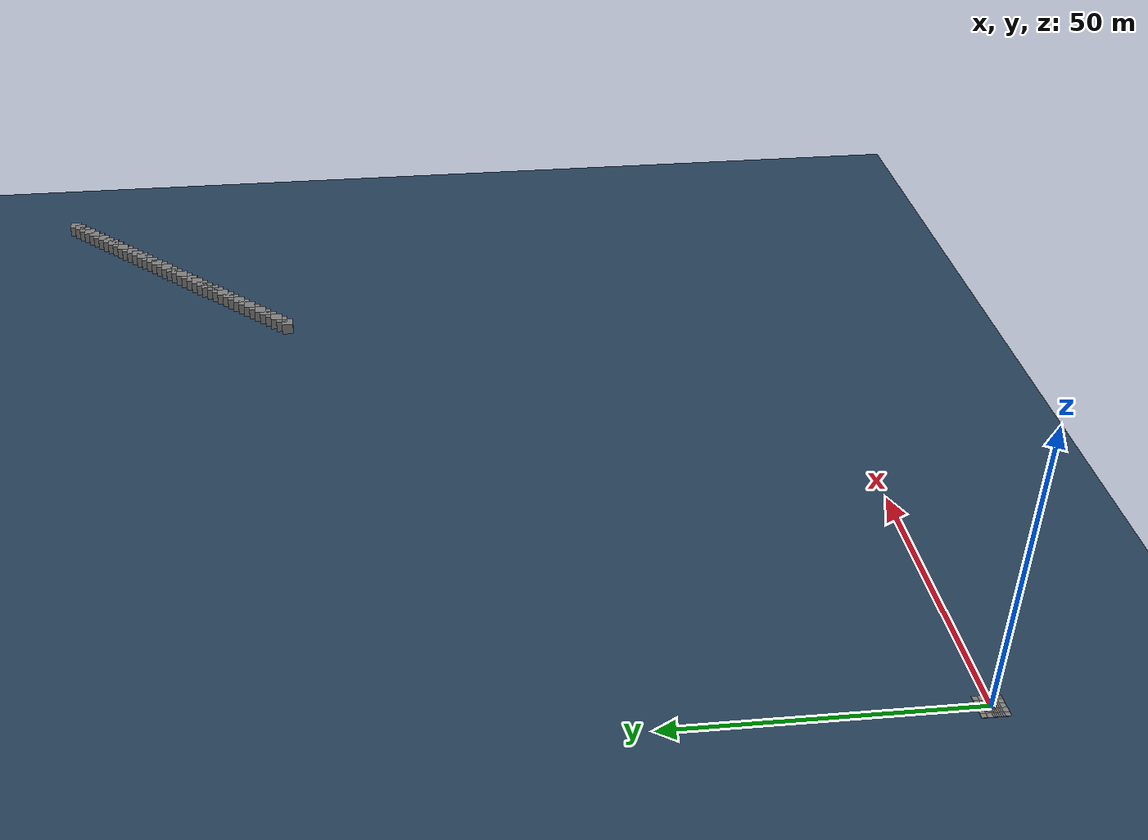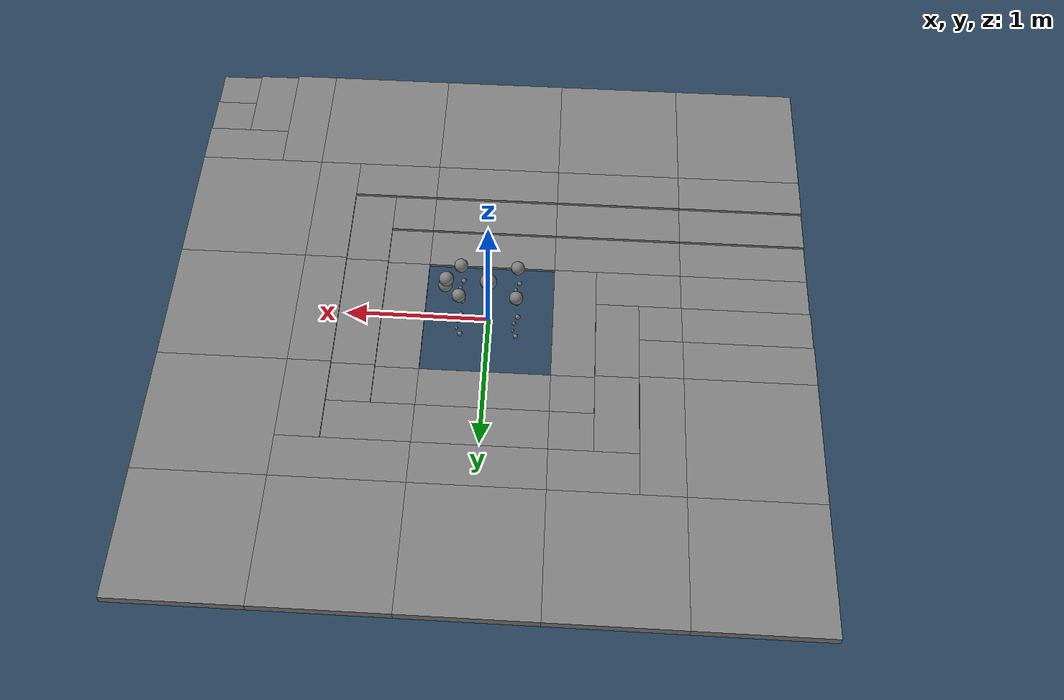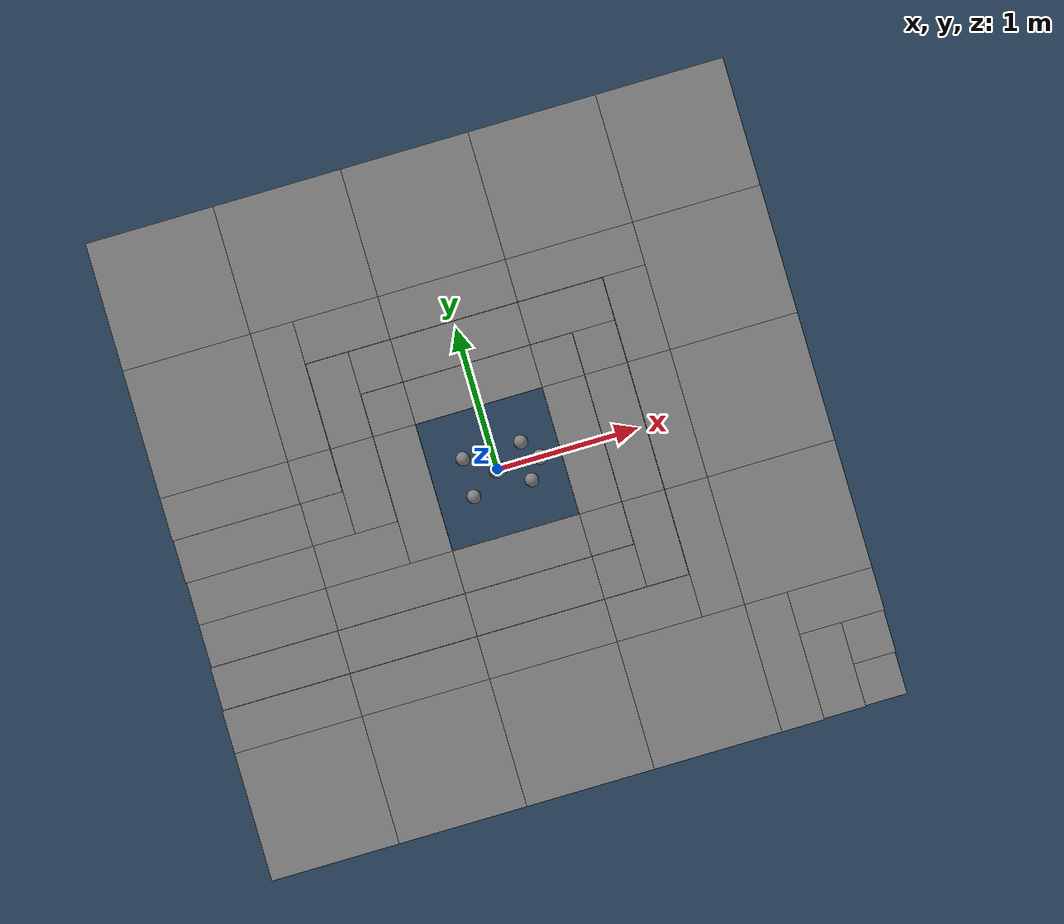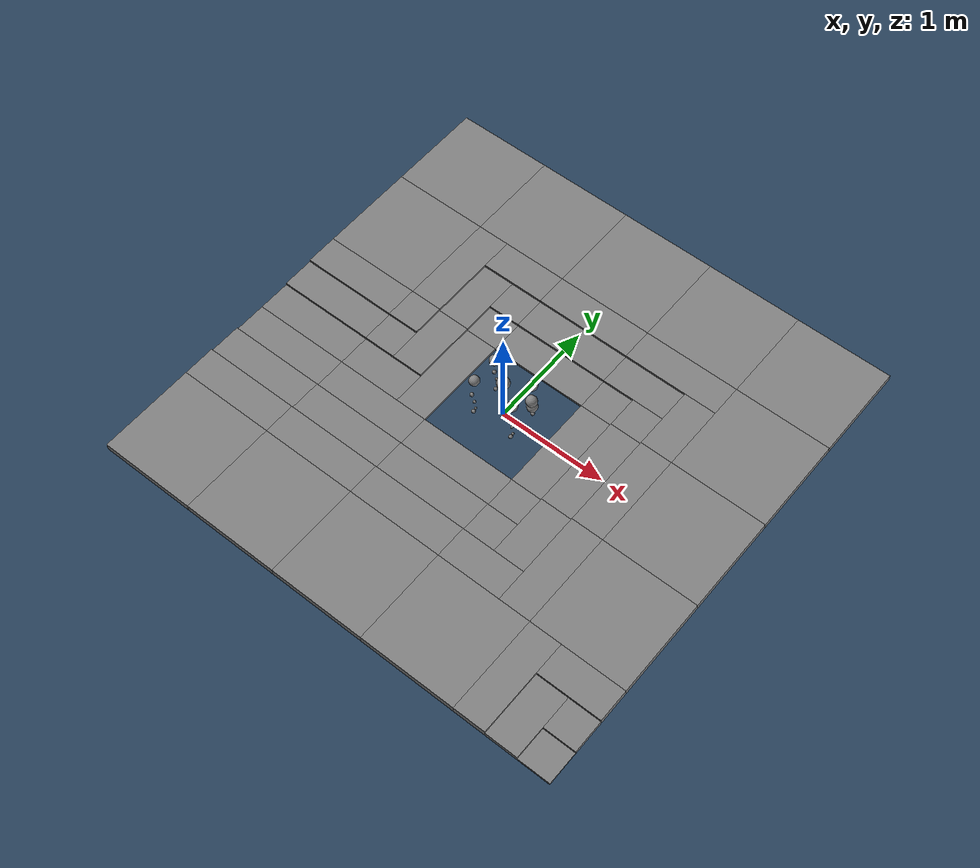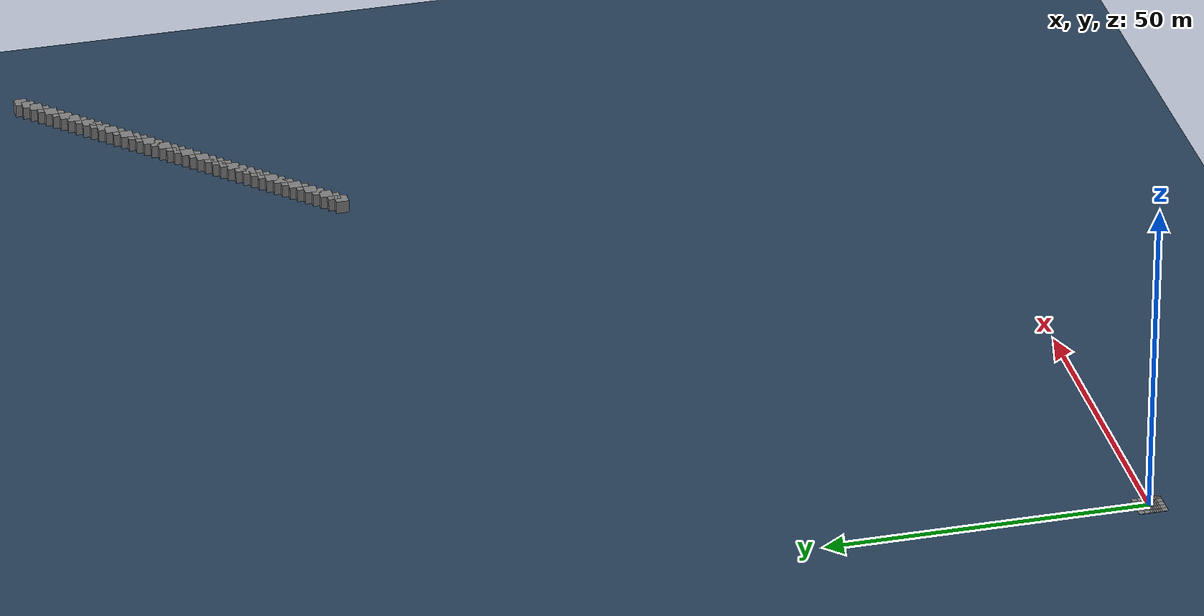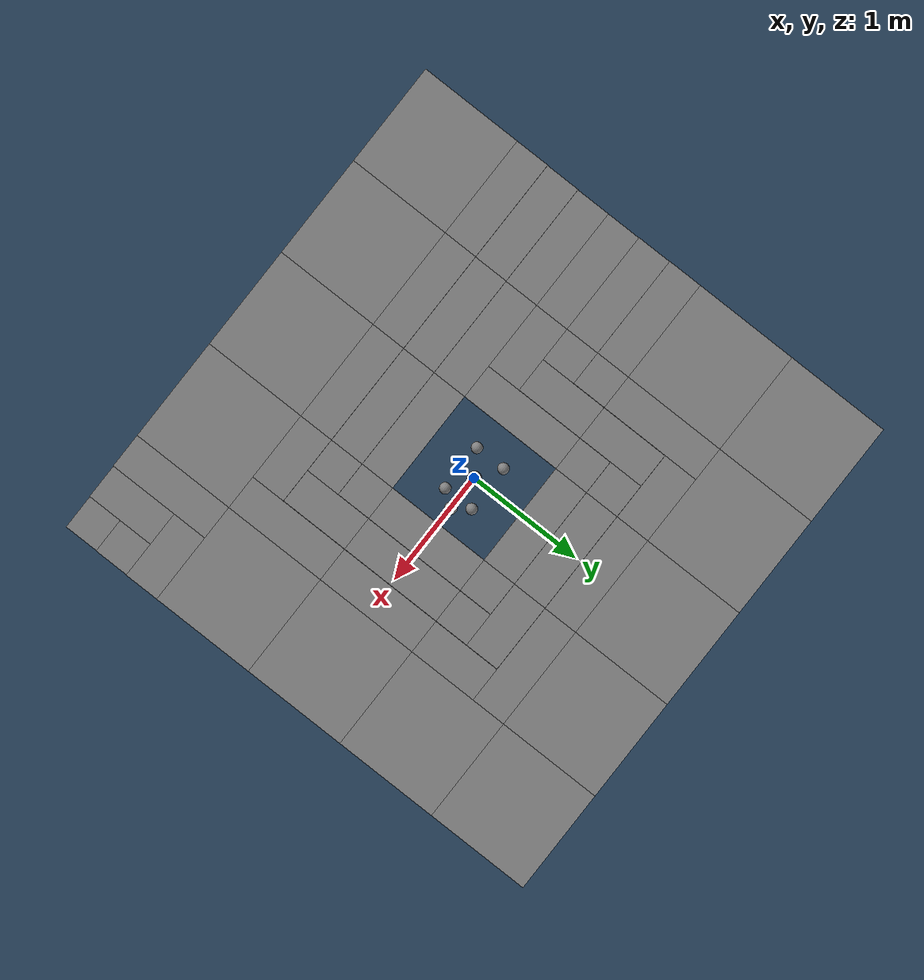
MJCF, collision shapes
<mujoco model="go2 scene">
  <include file="go2_mjx_feetonly.xml" />

  <statistic center="0 0 0.1" extent="0.8" />

  <visual>
    <headlight diffuse="0.6 0.6 0.6" ambient="0.3 0.3 0.3" specular="0 0 0" />
    <rgba haze="0.15 0.25 0.35 1" />
    <global azimuth="-130" elevation="-20" />
  </visual>

  <asset>
    <texture type="skybox" builtin="gradient" rgb1="0.3 0.5 0.7" rgb2="0 0 0" width="512" height="3072" />
    <texture type="2d" name="groundplane" builtin="checker" mark="edge" rgb1="0.2 0.3 0.4" rgb2="0.1 0.2 0.3" markrgb="0.8 0.8 0.8" width="300" height="300" />
    <material name="groundplane" texture="groundplane" texuniform="true" texrepeat="5 5" reflectance="0.2" />
  </asset>

  <worldbody>
    <light pos="0 0 1.5" dir="0 0 -1" directional="true" />
    <geom name="floor" pos="0 0 0" size="0 0 0.01" type="plane" contype="2" conaffinity="1" material="groundplane" />
  <body pos="-1.7999999999999998 -1.7999999999999998 0.03" quat="1.0 0.0 0.0 0.0" name="box_Nm6Tr"><geom type="box" size="0.44999999999999996 0.44999999999999996 0.03" contype="2" conaffinity="1" /></body><body pos="-1.7999999999999998 -0.6 0.01" quat="0.7071067811865476 0.0 0.0 -0.7071067811865475" name="box_NwNxp"><geom type="box" size="0.15 0.44999999999999996 0.01" contype="2" conaffinity="1" /></body><body pos="-1.7999999999999998 -0.8999999999999999 0.02" quat="0.7071067811865476 0.0 0.0 -0.7071067811865475" name="box_HHvL6"><geom type="box" size="0.15 0.44999999999999996 0.02" contype="2" conaffinity="1" /></body><body pos="-1.7999999999999998 -1.2 0.03" quat="0.7071067811865476 0.0 0.0 -0.7071067811865475" name="box_36J16"><geom type="box" size="0.15 0.44999999999999996 0.03" contype="2" conaffinity="1" /></body><body pos="-1.7999999999999998 -0.29999999999999993 0.01" quat="0.7071067811865476 0.0 0.0 0.7071067811865475" name="box_MTWan"><geom type="box" size="0.15 0.44999999999999996 0.01" contype="2" conaffinity="1" /></body><body pos="-1.7999999999999998 0.0 0.02" quat="0.7071067811865476 0.0 0.0 0.7071067811865475" name="box_zDFGZ"><geom type="box" size="0.15 0.44999999999999996 0.02" contype="2" conaffinity="1" /></body><body pos="-1.7999999999999998 0.30000000000000004 0.03" quat="0.7071067811865476 0.0 0.0 0.7071067811865475" name="box_k5GUp"><geom type="box" size="0.15 0.44999999999999996 0.03" contype="2" conaffinity="1" /></body><body pos="-1.7999999999999998 0.8999999999999999 0.03" quat="1.0 0.0 0.0 0.0" name="box_pOwWk"><geom type="box" size="0.44999999999999996 0.44999999999999996 0.03" contype="2" conaffinity="1" /></body><body pos="-1.7999999999999998 1.7999999999999998 0.03" quat="1.0 0.0 0.0 0.0" name="box_FNOws"><geom type="box" size="0.44999999999999996 0.44999999999999996 0.03" contype="2" conaffinity="1" /></body><body pos="-0.8999999999999999 -1.7999999999999998 0.03" quat="1.0 0.0 0.0 0.0" name="box_8z6QD"><geom type="box" size="0.44999999999999996 0.44999999999999996 0.03" contype="2" conaffinity="1" /></body><body pos="-0.8999999999999999 -0.6 0.01" quat="0.7071067811865476 0.0 0.0 -0.7071067811865475" name="box_YIve3"><geom type="box" size="0.15 0.44999999999999996 0.01" contype="2" conaffinity="1" /></body><body pos="-0.8999999999999999 -0.8999999999999999 0.02" quat="0.7071067811865476 0.0 0.0 -0.7071067811865475" name="box_hAleP"><geom type="box" size="0.15 0.44999999999999996 0.02" contype="2" conaffinity="1" /></body><body pos="-0.8999999999999999 -1.2 0.03" quat="0.7071067811865476 0.0 0.0 -0.7071067811865475" name="box_Pur32"><geom type="box" size="0.15 0.44999999999999996 0.03" contype="2" conaffinity="1" /></body><body pos="-1.2 0.29999999999999993 0.03" quat="1.0 0.0 0.0 0.0" name="box_qXF1c"><geom type="box" size="0.15 0.15 0.03" contype="2" conaffinity="1" /></body><body pos="-0.8999999999999999 0.14999999999999994 0.019999999999999997" quat="1.0 0.0 0.0 0.0" name="box_hrl3b"><geom type="box" size="0.15 0.3 0.019999999999999997" contype="2" conaffinity="1" /></body><body pos="-0.5999999999999999 -5.551115123125783e-17 0.009999999999999997" quat="1.0 0.0 0.0 0.0" name="box_dgnCx"><geom type="box" size="0.15 0.44999999999999996 0.009999999999999997" contype="2" conaffinity="1" /></body><body pos="-1.1999999999999997 -3.714144924404753e-17 0.019999999999999997" quat="0.7071067811865476 0.0 0.0 0.7071067811865475" name="box_VsTG2"><geom type="box" size="0.15 0.15 0.019999999999999997" contype="2" conaffinity="1" /></body><body pos="-1.0499999999999998 -0.30000000000000004 0.009999999999999997" quat="0.7071067811865476 0.0 0.0 0.7071067811865475" name="box_1s2xs"><geom type="box" size="0.15 0.3 0.009999999999999997" contype="2" conaffinity="1" /></body><body pos="-0.6 0.5999999999999999 0.01" quat="6.123233995736766e-17 0.0 0.0 1.0" name="box_fYZ6W"><geom type="box" size="0.15 0.15 0.01" contype="2" conaffinity="1" /></body><body pos="-0.8999999999999999 0.75 0.02" quat="6.123233995736766e-17 0.0 0.0 1.0" name="box_XAeQL"><geom type="box" size="0.15 0.3 0.02" contype="2" conaffinity="1" /></body><body pos="-1.2 0.9 0.03" quat="6.123233995736766e-17 0.0 0.0 1.0" name="box_OOl2y"><geom type="box" size="0.15 0.44999999999999996 0.03" contype="2" conaffinity="1" /></body><body pos="-0.6 0.8999999999999999 0.02" quat="-0.7071067811865475 -0.0 0.0 0.7071067811865476" name="box_5gOLo"><geom type="box" size="0.15 0.15 0.02" contype="2" conaffinity="1" /></body><body pos="-0.7499999999999999 1.2 0.03" quat="-0.7071067811865475 -0.0 0.0 0.7071067811865476" name="box_pNANv"><geom type="box" size="0.15 0.3 0.03" contype="2" conaffinity="1" /></body><body pos="-0.8999999999999999 1.7999999999999998 0.03" quat="1.0 0.0 0.0 0.0" name="box_EJ3fZ"><geom type="box" size="0.44999999999999996 0.44999999999999996 0.03" contype="2" conaffinity="1" /></body><body pos="0.0 -1.7999999999999998 0.03" quat="1.0 0.0 0.0 0.0" name="box_9PJuK"><geom type="box" size="0.44999999999999996 0.44999999999999996 0.03" contype="2" conaffinity="1" /></body><body pos="-1.8369701987210294e-17 -0.6 0.01" quat="0.7071067811865476 0.0 0.0 -0.7071067811865475" name="box_mPOBo"><geom type="box" size="0.15 0.44999999999999996 0.01" contype="2" conaffinity="1" /></body><body pos="0.0 -0.8999999999999999 0.02" quat="0.7071067811865476 0.0 0.0 -0.7071067811865475" name="box_4MjoI"><geom type="box" size="0.15 0.44999999999999996 0.02" contype="2" conaffinity="1" /></body><body pos="1.83697019872103e-17 -1.2 0.03" quat="0.7071067811865476 0.0 0.0 -0.7071067811865475" name="box_TPn5B"><geom type="box" size="0.15 0.44999999999999996 0.03" contype="2" conaffinity="1" /></body><body pos="-1.8369701987210294e-17 0.6 0.01" quat="0.7071067811865476 0.0 0.0 0.7071067811865475" name="box_0GTE1"><geom type="box" size="0.15 0.44999999999999996 0.01" contype="2" conaffinity="1" /></body><body pos="0.0 0.8999999999999999 0.02" quat="0.7071067811865476 0.0 0.0 0.7071067811865475" name="box_3olFJ"><geom type="box" size="0.15 0.44999999999999996 0.02" contype="2" conaffinity="1" /></body><body pos="1.83697019872103e-17 1.2 0.03" quat="0.7071067811865476 0.0 0.0 0.7071067811865475" name="box_oZWzq"><geom type="box" size="0.15 0.44999999999999996 0.03" contype="2" conaffinity="1" /></body><body pos="0.0 1.7999999999999998 0.03" quat="1.0 0.0 0.0 0.0" name="box_ZQ9qX"><geom type="box" size="0.44999999999999996 0.44999999999999996 0.03" contype="2" conaffinity="1" /></body><body pos="0.8999999999999999 -1.7999999999999998 0.03" quat="1.0 0.0 0.0 0.0" name="box_4Rkdt"><geom type="box" size="0.44999999999999996 0.44999999999999996 0.03" contype="2" conaffinity="1" /></body><body pos="0.5999999999999999 -0.6 0.01" quat="1.0 0.0 0.0 0.0" name="box_5QGp2"><geom type="box" size="0.15 0.15 0.01" contype="2" conaffinity="1" /></body><body pos="0.8999999999999999 -0.75 0.02" quat="1.0 0.0 0.0 0.0" name="box_3v6BB"><geom type="box" size="0.15 0.3 0.02" contype="2" conaffinity="1" /></body><body pos="1.2 -0.8999999999999999 0.03" quat="1.0 0.0 0.0 0.0" name="box_USUPY"><geom type="box" size="0.15 0.44999999999999996 0.03" contype="2" conaffinity="1" /></body><body pos="0.6 -0.8999999999999999 0.02" quat="0.7071067811865476 0.0 0.0 0.7071067811865475" name="box_awMER"><geom type="box" size="0.15 0.15 0.02" contype="2" conaffinity="1" /></body><body pos="0.75 -1.2 0.03" quat="0.7071067811865476 0.0 0.0 0.7071067811865475" name="box_icqPL"><geom type="box" size="0.15 0.3 0.03" contype="2" conaffinity="1" /></body><body pos="0.6 0.0 0.01" quat="1.0 0.0 0.0 0.0" name="box_sB2ld"><geom type="box" size="0.15 0.44999999999999996 0.01" contype="2" conaffinity="1" /></body><body pos="0.8999999999999999 0.0 0.02" quat="1.0 0.0 0.0 0.0" name="box_5x1b9"><geom type="box" size="0.15 0.44999999999999996 0.02" contype="2" conaffinity="1" /></body><body pos="1.2 0.0 0.03" quat="1.0 0.0 0.0 0.0" name="box_esOvl"><geom type="box" size="0.15 0.44999999999999996 0.03" contype="2" conaffinity="1" /></body><body pos="0.6 0.5999999999999999 0.01" quat="0.7071067811865476 0.0 0.0 0.7071067811865475" name="box_CcYl1"><geom type="box" size="0.15 0.15 0.01" contype="2" conaffinity="1" /></body><body pos="0.75 0.8999999999999999 0.02" quat="0.7071067811865476 0.0 0.0 0.7071067811865475" name="box_6Eo4k"><geom type="box" size="0.15 0.3 0.02" contype="2" conaffinity="1" /></body><body pos="0.9 1.2 0.03" quat="0.7071067811865476 0.0 0.0 0.7071067811865475" name="box_aPaN2"><geom type="box" size="0.15 0.44999999999999996 0.03" contype="2" conaffinity="1" /></body><body pos="0.8999999999999999 0.6 0.02" quat="6.123233995736766e-17 0.0 0.0 1.0" name="box_m9Nul"><geom type="box" size="0.15 0.15 0.02" contype="2" conaffinity="1" /></body><body pos="1.2 0.75 0.03" quat="6.123233995736766e-17 0.0 0.0 1.0" name="box_eV5jA"><geom type="box" size="0.15 0.3 0.03" contype="2" conaffinity="1" /></body><body pos="0.8999999999999999 1.7999999999999998 0.03" quat="1.0 0.0 0.0 0.0" name="box_YvWSe"><geom type="box" size="0.44999999999999996 0.44999999999999996 0.03" contype="2" conaffinity="1" /></body><body pos="2.0999999999999996 -2.0999999999999996 0.01" quat="6.123233995736766e-17 0.0 0.0 1.0" name="box_x4KJy"><geom type="box" size="0.15 0.15 0.01" contype="2" conaffinity="1" /></body><body pos="1.7999999999999998 -1.9499999999999997 0.02" quat="6.123233995736766e-17 0.0 0.0 1.0" name="box_FozON"><geom type="box" size="0.15 0.3 0.02" contype="2" conaffinity="1" /></body><body pos="1.4999999999999998 -1.7999999999999998 0.03" quat="6.123233995736766e-17 0.0 0.0 1.0" name="box_8gdtH"><geom type="box" size="0.15 0.44999999999999996 0.03" contype="2" conaffinity="1" /></body><body pos="2.0999999999999996 -1.7999999999999998 0.02" quat="-0.7071067811865475 -0.0 0.0 0.7071067811865476" name="box_yaygV"><geom type="box" size="0.15 0.15 0.02" contype="2" conaffinity="1" /></body><body pos="1.9499999999999997 -1.4999999999999998 0.03" quat="-0.7071067811865475 -0.0 0.0 0.7071067811865476" name="box_V4ypC"><geom type="box" size="0.15 0.3 0.03" contype="2" conaffinity="1" /></body><body pos="1.7999999999999998 -0.8999999999999999 0.03" quat="1.0 0.0 0.0 0.0" name="box_dAKIn"><geom type="box" size="0.44999999999999996 0.44999999999999996 0.03" contype="2" conaffinity="1" /></body><body pos="1.7999999999999998 0.0 0.03" quat="1.0 0.0 0.0 0.0" name="box_LXe10"><geom type="box" size="0.44999999999999996 0.44999999999999996 0.03" contype="2" conaffinity="1" /></body><body pos="1.7999999999999998 0.8999999999999999 0.03" quat="1.0 0.0 0.0 0.0" name="box_yuHFf"><geom type="box" size="0.44999999999999996 0.44999999999999996 0.03" contype="2" conaffinity="1" /></body><body pos="1.7999999999999998 1.7999999999999998 0.03" quat="1.0 0.0 0.0 0.0" name="box_IHDcL"><geom type="box" size="0.44999999999999996 0.44999999999999996 0.03" contype="2" conaffinity="1" /></body><body pos="100 100 10" quat="1.0 0.0 0.0 0.0" name="box_W3Jhx"><geom type="box" size="1.0 1.0 1.0" contype="2" conaffinity="1" /></body><body pos="101 101 10" quat="1.0 0.0 0.0 0.0" name="box_bedo7"><geom type="box" size="1.0 1.0 1.0" contype="2" conaffinity="1" /></body><body pos="102 102 10" quat="1.0 0.0 0.0 0.0" name="box_allpR"><geom type="box" size="1.0 1.0 1.0" contype="2" conaffinity="1" /></body><body pos="103 103 10" quat="1.0 0.0 0.0 0.0" name="box_Fm7lK"><geom type="box" size="1.0 1.0 1.0" contype="2" conaffinity="1" /></body><body pos="104 104 10" quat="1.0 0.0 0.0 0.0" name="box_JejyQ"><geom type="box" size="1.0 1.0 1.0" contype="2" conaffinity="1" /></body><body pos="105 105 10" quat="1.0 0.0 0.0 0.0" name="box_LWDQL"><geom type="box" size="1.0 1.0 1.0" contype="2" conaffinity="1" /></body><body pos="106 106 10" quat="1.0 0.0 0.0 0.0" name="box_sZZhk"><geom type="box" size="1.0 1.0 1.0" contype="2" conaffinity="1" /></body><body pos="107 107 10" quat="1.0 0.0 0.0 0.0" name="box_JkpL2"><geom type="box" size="1.0 1.0 1.0" contype="2" conaffinity="1" /></body><body pos="108 108 10" quat="1.0 0.0 0.0 0.0" name="box_k1W71"><geom type="box" size="1.0 1.0 1.0" contype="2" conaffinity="1" /></body><body pos="109 109 10" quat="1.0 0.0 0.0 0.0" name="box_2NiGT"><geom type="box" size="1.0 1.0 1.0" contype="2" conaffinity="1" /></body><body pos="110 110 10" quat="1.0 0.0 0.0 0.0" name="box_JyHvY"><geom type="box" size="1.0 1.0 1.0" contype="2" conaffinity="1" /></body><body pos="111 111 10" quat="1.0 0.0 0.0 0.0" name="box_RayBq"><geom type="box" size="1.0 1.0 1.0" contype="2" conaffinity="1" /></body><body pos="112 112 10" quat="1.0 0.0 0.0 0.0" name="box_3vDnX"><geom type="box" size="1.0 1.0 1.0" contype="2" conaffinity="1" /></body><body pos="113 113 10" quat="1.0 0.0 0.0 0.0" name="box_5hGzr"><geom type="box" size="1.0 1.0 1.0" contype="2" conaffinity="1" /></body><body pos="114 114 10" quat="1.0 0.0 0.0 0.0" name="box_ZD3Fl"><geom type="box" size="1.0 1.0 1.0" contype="2" conaffinity="1" /></body><body pos="115 115 10" quat="1.0 0.0 0.0 0.0" name="box_ut9Ld"><geom type="box" size="1.0 1.0 1.0" contype="2" conaffinity="1" /></body><body pos="116 116 10" quat="1.0 0.0 0.0 0.0" name="box_J7LPO"><geom type="box" size="1.0 1.0 1.0" contype="2" conaffinity="1" /></body><body pos="117 117 10" quat="1.0 0.0 0.0 0.0" name="box_GQGOY"><geom type="box" size="1.0 1.0 1.0" contype="2" conaffinity="1" /></body><body pos="118 118 10" quat="1.0 0.0 0.0 0.0" name="box_AphDC"><geom type="box" size="1.0 1.0 1.0" contype="2" conaffinity="1" /></body><body pos="119 119 10" quat="1.0 0.0 0.0 0.0" name="box_3btjo"><geom type="box" size="1.0 1.0 1.0" contype="2" conaffinity="1" /></body><body pos="120 120 10" quat="1.0 0.0 0.0 0.0" name="box_jTQrE"><geom type="box" size="1.0 1.0 1.0" contype="2" conaffinity="1" /></body><body pos="121 121 10" quat="1.0 0.0 0.0 0.0" name="box_LyZuO"><geom type="box" size="1.0 1.0 1.0" contype="2" conaffinity="1" /></body><body pos="122 122 10" quat="1.0 0.0 0.0 0.0" name="box_Upa8G"><geom type="box" size="1.0 1.0 1.0" contype="2" conaffinity="1" /></body><body pos="123 123 10" quat="1.0 0.0 0.0 0.0" name="box_UAGNO"><geom type="box" size="1.0 1.0 1.0" contype="2" conaffinity="1" /></body><body pos="124 124 10" quat="1.0 0.0 0.0 0.0" name="box_kvA9O"><geom type="box" size="1.0 1.0 1.0" contype="2" conaffinity="1" /></body><body pos="125 125 10" quat="1.0 0.0 0.0 0.0" name="box_mHSEJ"><geom type="box" size="1.0 1.0 1.0" contype="2" conaffinity="1" /></body><body pos="126 126 10" quat="1.0 0.0 0.0 0.0" name="box_QUiam"><geom type="box" size="1.0 1.0 1.0" contype="2" conaffinity="1" /></body><body pos="127 127 10" quat="1.0 0.0 0.0 0.0" name="box_848nK"><geom type="box" size="1.0 1.0 1.0" contype="2" conaffinity="1" /></body><body pos="128 128 10" quat="1.0 0.0 0.0 0.0" name="box_ywJdI"><geom type="box" size="1.0 1.0 1.0" contype="2" conaffinity="1" /></body><body pos="129 129 10" quat="1.0 0.0 0.0 0.0" name="box_64gjt"><geom type="box" size="1.0 1.0 1.0" contype="2" conaffinity="1" /></body><body pos="130 130 10" quat="1.0 0.0 0.0 0.0" name="box_diRX2"><geom type="box" size="1.0 1.0 1.0" contype="2" conaffinity="1" /></body><body pos="131 131 10" quat="1.0 0.0 0.0 0.0" name="box_tNyux"><geom type="box" size="1.0 1.0 1.0" contype="2" conaffinity="1" /></body><body pos="132 132 10" quat="1.0 0.0 0.0 0.0" name="box_lfeoi"><geom type="box" size="1.0 1.0 1.0" contype="2" conaffinity="1" /></body><body pos="133 133 10" quat="1.0 0.0 0.0 0.0" name="box_d6KoO"><geom type="box" size="1.0 1.0 1.0" contype="2" conaffinity="1" /></body><body pos="134 134 10" quat="1.0 0.0 0.0 0.0" name="box_vQ0cW"><geom type="box" size="1.0 1.0 1.0" contype="2" conaffinity="1" /></body><body pos="135 135 10" quat="1.0 0.0 0.0 0.0" name="box_um5fs"><geom type="box" size="1.0 1.0 1.0" contype="2" conaffinity="1" /></body><body pos="136 136 10" quat="1.0 0.0 0.0 0.0" name="box_Da7Bc"><geom type="box" size="1.0 1.0 1.0" contype="2" conaffinity="1" /></body><body pos="137 137 10" quat="1.0 0.0 0.0 0.0" name="box_Od8O4"><geom type="box" size="1.0 1.0 1.0" contype="2" conaffinity="1" /></body><body pos="138 138 10" quat="1.0 0.0 0.0 0.0" name="box_N4N6m"><geom type="box" size="1.0 1.0 1.0" contype="2" conaffinity="1" /></body><body pos="139 139 10" quat="1.0 0.0 0.0 0.0" name="box_WhZtE"><geom type="box" size="1.0 1.0 1.0" contype="2" conaffinity="1" /></body><body pos="140 140 10" quat="1.0 0.0 0.0 0.0" name="box_Z2bry"><geom type="box" size="1.0 1.0 1.0" contype="2" conaffinity="1" /></body><body pos="141 141 10" quat="1.0 0.0 0.0 0.0" name="box_GjQaW"><geom type="box" size="1.0 1.0 1.0" contype="2" conaffinity="1" /></body><body pos="142 142 10" quat="1.0 0.0 0.0 0.0" name="box_NfHYf"><geom type="box" size="1.0 1.0 1.0" contype="2" conaffinity="1" /></body></worldbody>
</mujoco>

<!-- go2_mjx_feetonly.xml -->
<mujoco model="go2">
  <compiler angle="radian" meshdir="assets" autolimits="true"/>

  <option cone="pyramidal" impratio="100" iterations="5" ls_iterations="5">
    <flag eulerdamp="disable"/>
  </option>
 <custom>
    <!-- Potentially optimal -->
    <!-- Safe-->
    <numeric data="4" name="max_contact_points"/>
    <numeric data="25" name="max_geom_pairs"/>
 </custom>
 <option iterations="5" ls_iterations="5" timestep="0.004" integrator="Euler">
    <flag eulerdamp="disable"/>
  </option>
  <default>
    <default class="go2">
      <geom friction="0.6" margin="0.001" condim="1" contype="0" conaffinity="0"/>

      <joint axis="0 1 0" damping="2" armature="0.01"/>
      <general forcerange="-24 24" biastype="affine" gainprm="50 0 0" biasprm="0 -50 -0.5"/>

      <default class="abduction">
        <joint axis="1 0 0" range="-1.0472 1.0472"/>
        <general ctrlrange="-0.9472 0.9472"/>
      </default>
      <default class="hip">
        <joint range="-1.5708 3.4907"/>
        <general ctrlrange="-1.4 2.5"/>
      </default>
      <default class="knee">
        <joint range="-2.7227 -0.83776"/>
        <general ctrlrange="-2.6227 -0.84776"/>
      </default>
      <default class="visual">
        <geom type="mesh" contype="0" conaffinity="0" group="2"/>
      </default>
      <default class="go2foot">
        <site group="1" pos="-0.002 0 -0.213"/>
        <geom rgba="0.231373 0.380392 0.705882 1"/>
      </default>
      <default class="collision">
        <geom group="3"/>
        <default class="foot">
          <geom type="sphere" size="0.0175" pos="-0.002 0 -0.213" solimp="0.015 1 0.031" contype="1" conaffinity="2" margin="-0.001"/>

        </default>
      </default>
    </default>
  </default>

  <asset>
    <material name="metal" rgba=".9 .95 .95 1"/>
    <material name="black" rgba="0 0 0 1"/>
    <material name="white" rgba="1 1 1 1"/>
    <material name="gray" rgba="0.671705 0.692426 0.774270 1"/>

    <mesh file="base_0.obj"/>
    <mesh file="base_1.obj"/>
    <mesh file="base_2.obj"/>
    <mesh file="base_3.obj"/>
    <mesh file="base_4.obj"/>
    <mesh file="hip_0.obj"/>
    <mesh file="hip_1.obj"/>
    <mesh file="thigh_0.obj"/>
    <mesh file="thigh_1.obj"/>
    <mesh file="thigh_mirror_0.obj"/>
    <mesh file="thigh_mirror_1.obj"/>
    <mesh file="calf_0.obj"/>
    <mesh file="calf_1.obj"/>
    <mesh file="calf_mirror_0.obj"/>
    <mesh file="calf_mirror_1.obj"/>
    <mesh file="foot.obj"/>
  </asset>

  <worldbody>
    <body name="base" pos="0 0 0.445" childclass="go2">
      <camera name="track" pos="0.846 -1.465 0.916" xyaxes="0.866 0.500 0.000 -0.171 0.296 0.940" mode="trackcom"/>
      <inertial pos="0.021112 0 -0.005366" quat="-0.000543471 0.713435 -0.00173769 0.700719" mass="6.921"
        diaginertia="0.107027 0.0980771 0.0244531"/>
      <freejoint/>
      <geom mesh="base_0" material="black" class="visual"/>
      <geom mesh="base_1" material="black" class="visual"/>
      <geom mesh="base_2" material="black" class="visual"/>
      <geom mesh="base_3" material="white" class="visual"/>
      <geom mesh="base_4" material="gray" class="visual"/>
      <geom size="0.057 0.04675 0.057" class="collision"/>
      <geom size="0.05 0.045" pos="0.285 0 0.01" class="collision"/>
      <geom size="0.047" pos="0.293 0 -0.06" class="collision"/>
      <site name="imu" pos="-0.02557 0 0.04232"/>
      <body name="FL_hip" pos="0.1934 0.0465 0">
        <inertial pos="-0.0054 0.00194 -0.000105" quat="0.497014 0.499245 0.505462 0.498237" mass="0.678"
          diaginertia="0.00088403 0.000596003 0.000479967"/>
        <joint name="FL_hip_joint" class="abduction"/>
        <geom mesh="hip_0" material="metal" class="visual"/>
        <geom mesh="hip_1" material="gray" class="visual"/>
        <geom size="0.046 0.02" pos="0 0.08 0" quat="1 1 0 0" class="collision"/>
        <body name="FL_thigh" pos="0 0.0955 0">
          <inertial pos="-0.00374 -0.0223 -0.0327" quat="0.829533 0.0847635 -0.0200632 0.551623" mass="1.152"
            diaginertia="0.00594973 0.00584149 0.000878787"/>
          <joint name="FL_thigh_joint" class="hip"/>
          <geom mesh="thigh_0" material="metal" class="visual"/>
          <geom mesh="thigh_1" material="gray" class="visual"/>
          <geom size="0.017 0.01225 0.017" pos="-0.015 0 -0.1955" quat="0.707107 0 0.707107 0" class="collision"/>
          <body name="FL_calf" pos="0 0 -0.213">
            <inertial pos="0.00629595 -0.000622121 -0.141417" quat="0.710672 0.00154099 -0.00450087 0.703508"
              mass="0.241352" diaginertia="0.0014901 0.00146356 5.31397e-05"/>
            <joint name="FL_calf_joint" class="knee"/>
            <geom mesh="calf_0" material="gray" class="visual"/>
            <geom mesh="calf_1" material="black" class="visual"/>
            <geom size="0.012 0.06" pos="0.008 0 -0.06" quat="0.994493 0 -0.104807 0" class="collision"/>
            <geom size="0.011 0.0325" pos="0.02 0 -0.148" quat="0.999688 0 0.0249974 0" class="collision"/>
            <geom pos="0 0 -0.213" mesh="foot" class="visual" material="black"/>
            <geom name="FL" class="foot"/>
            <site name="FL_foot" class="go2foot"/>
          </body>
        </body>
      </body>
      <body name="FR_hip" pos="0.1934 -0.0465 0">
        <inertial pos="-0.0054 -0.00194 -0.000105" quat="0.498237 0.505462 0.499245 0.497014" mass="0.678"
          diaginertia="0.00088403 0.000596003 0.000479967"/>
        <joint name="FR_hip_joint" class="abduction"/>
        <geom mesh="hip_0" material="metal" class="visual" quat="4.63268e-05 1 0 0"/>
        <geom mesh="hip_1" material="gray" class="visual" quat="4.63268e-05 1 0 0"/>
        <geom size="0.046 0.02" pos="0 -0.08 0" quat="0.707107 0.707107 0 0" class="collision"/>
        <body name="FR_thigh" pos="0 -0.0955 0">
          <inertial pos="-0.00374 0.0223 -0.0327" quat="0.551623 -0.0200632 0.0847635 0.829533" mass="1.152"
            diaginertia="0.00594973 0.00584149 0.000878787"/>
          <joint name="FR_thigh_joint" class="hip"/>
          <geom mesh="thigh_mirror_0" material="metal" class="visual"/>
          <geom mesh="thigh_mirror_1" material="gray" class="visual"/>
          <geom size="0.017 0.01225 0.017" pos="-0.015 0 -0.1955" quat="0.707107 0 0.707107 0" class="collision"/>
          <body name="FR_calf" pos="0 0 -0.213">
            <inertial pos="0.00629595 0.000622121 -0.141417" quat="0.703508 -0.00450087 0.00154099 0.710672"
              mass="0.241352" diaginertia="0.0014901 0.00146356 5.31397e-05"/>
            <joint name="FR_calf_joint" class="knee"/>
            <geom mesh="calf_mirror_0" material="gray" class="visual"/>
            <geom mesh="calf_mirror_1" material="black" class="visual"/>
            <geom size="0.013 0.06" pos="0.01 0 -0.06" quat="0.995004 0 -0.0998334 0" class="collision"/>
            <geom size="0.011 0.0325" pos="0.02 0 -0.148" quat="0.999688 0 0.0249974 0" class="collision"/>
            <geom pos="0 0 -0.213" mesh="foot" class="visual" material="black"/>
            <geom name="FR" class="foot"/>
            <site name="FR_foot" class="go2foot"/>
          </body>
        </body>
      </body>
      <body name="RL_hip" pos="-0.1934 0.0465 0">
        <inertial pos="0.0054 0.00194 -0.000105" quat="0.505462 0.498237 0.497014 0.499245" mass="0.678"
          diaginertia="0.00088403 0.000596003 0.000479967"/>
        <joint name="RL_hip_joint" class="abduction"/>
        <geom mesh="hip_0" material="metal" class="visual" quat="4.63268e-05 0 1 0"/>
        <geom mesh="hip_1" material="gray" class="visual" quat="4.63268e-05 0 1 0"/>
        <geom size="0.046 0.02" pos="0 0.08 0" quat="0.707107 0.707107 0 0" class="collision"/>
        <body name="RL_thigh" pos="0 0.0955 0">
          <inertial pos="-0.00374 -0.0223 -0.0327" quat="0.829533 0.0847635 -0.0200632 0.551623" mass="1.152"
            diaginertia="0.00594973 0.00584149 0.000878787"/>
          <joint name="RL_thigh_joint" class="hip"/>
          <geom mesh="thigh_0" material="metal" class="visual"/>
          <geom mesh="thigh_1" material="gray" class="visual"/>
          <geom size="0.017 0.01225 0.017" pos="-0.015 0 -0.1955" quat="0.707107 0 0.707107 0" class="collision"/>
          <body name="RL_calf" pos="0 0 -0.213">
            <inertial pos="0.00629595 -0.000622121 -0.141417" quat="0.710672 0.00154099 -0.00450087 0.703508"
              mass="0.241352" diaginertia="0.0014901 0.00146356 5.31397e-05"/>
            <joint name="RL_calf_joint" class="knee"/>
            <geom mesh="calf_0" material="gray" class="visual"/>
            <geom mesh="calf_1" material="black" class="visual"/>
            <geom size="0.013 0.06" pos="0.01 0 -0.06" quat="0.995004 0 -0.0998334 0" class="collision"/>
            <geom size="0.011 0.0325" pos="0.02 0 -0.148" quat="0.999688 0 0.0249974 0" class="collision"/>
            <geom pos="0 0 -0.213" mesh="foot" class="visual" material="black"/>
            <geom name="RL" class="foot"/>
            <site name="RL_foot" class="go2foot"/>
          </body>
        </body>
      </body>
      <body name="RR_hip" pos="-0.1934 -0.0465 0">
        <inertial pos="0.0054 -0.00194 -0.000105" quat="0.499245 0.497014 0.498237 0.505462" mass="0.678"
          diaginertia="0.00088403 0.000596003 0.000479967"/>
        <joint name="RR_hip_joint" class="abduction"/>
        <geom mesh="hip_0" material="metal" class="visual" quat="2.14617e-09 4.63268e-05 4.63268e-05 -1"/>
        <geom mesh="hip_1" material="gray" class="visual" quat="2.14617e-09 4.63268e-05 4.63268e-05 -1"/>
        <geom size="0.046 0.02" pos="0 -0.08 0" quat="0.707107 0.707107 0 0" class="collision"/>
        <body name="RR_thigh" pos="0 -0.0955 0">
          <inertial pos="-0.00374 0.0223 -0.0327" quat="0.551623 -0.0200632 0.0847635 0.829533" mass="1.152"
            diaginertia="0.00594973 0.00584149 0.000878787"/>
          <joint name="RR_thigh_joint" class="hip"/>
          <geom mesh="thigh_mirror_0" material="metal" class="visual"/>
          <geom mesh="thigh_mirror_1" material="gray" class="visual"/>
          <geom size="0.017 0.01225 0.017" pos="-0.015 0 -0.1955" quat="0.707107 0 0.707107 0" class="collision"/>
          <body name="RR_calf" pos="0 0 -0.213">
            <inertial pos="0.00629595 0.000622121 -0.141417" quat="0.703508 -0.00450087 0.00154099 0.710672"
              mass="0.241352" diaginertia="0.0014901 0.00146356 5.31397e-05"/>
            <joint name="RR_calf_joint" class="knee"/>
            <geom mesh="calf_mirror_0" material="gray" class="visual"/>
            <geom mesh="calf_mirror_1" material="black" class="visual"/>
            <geom size="0.013 0.06" pos="0.01 0 -0.06" quat="0.995004 0 -0.0998334 0" class="collision"/>
            <geom size="0.011 0.0325" pos="0.02 0 -0.148" quat="0.999688 0 0.0249974 0" class="collision"/>
            <geom pos="0 0 -0.213" mesh="foot" class="visual" material="black"/>
            <geom name="RR" class="foot"/>
            <site name="RR_foot" class="go2foot"/>
          </body>
        </body>
      </body>
    </body>
  </worldbody>

  <actuator>
    <position class="abduction" name="FR_hip" joint="FR_hip_joint"/>
    <position class="hip" name="FR_thigh" joint="FR_thigh_joint"/>
    <position class="knee" name="FR_calf" joint="FR_calf_joint"/>
    <position class="abduction" name="FL_hip" joint="FL_hip_joint"/>
    <position class="hip" name="FL_thigh" joint="FL_thigh_joint"/>
    <position class="knee" name="FL_calf" joint="FL_calf_joint"/>
    <position class="abduction" name="RR_hip" joint="RR_hip_joint"/>
    <position class="hip" name="RR_thigh" joint="RR_thigh_joint"/>
    <position class="knee" name="RR_calf" joint="RR_calf_joint"/>
    <position class="abduction" name="RL_hip" joint="RL_hip_joint"/>
    <position class="hip" name="RL_thigh" joint="RL_thigh_joint"/>
    <position class="knee" name="RL_calf" joint="RL_calf_joint"/>
  </actuator>

  <sensor>
    <gyro site="imu" name="gyro"/>
    <accelerometer site="imu" name="accelerometer"/>
    <framequat objtype="site" objname="imu" name="orientation"/>
    <framepos objtype="site" objname="imu" name="global_position"/>
    <framelinvel objtype="site" objname="imu" name="global_linvel"/>
    <frameangvel objtype="site" objname="imu" name="global_angvel"/>
    <!-- returns local velocity of robot -->
    <velocimeter site="imu" name="local_linvel"/>
    <framezaxis objtype="site" objname="imu" name="upvector"/>
    <framepos objtype="site" objname="FR_foot" name="FR_pos" reftype="site" refname="imu"/>
    <framepos objtype="site" objname="FL_foot" name="FL_pos" reftype="site" refname="imu"/>
    <framepos objtype="site" objname="RR_foot" name="RR_pos" reftype="site" refname="imu"/>
    <framepos objtype="site" objname="RL_foot" name="RL_pos" reftype="site" refname="imu"/>
    <framelinvel objtype="site" objname="FR_foot" name="FR_foot_global_linvel"/>
    <framelinvel objtype="site" objname="FL_foot" name="FL_foot_global_linvel"/>
    <framelinvel objtype="site" objname="RR_foot" name="RR_foot_global_linvel"/>
    <framelinvel objtype="site" objname="RL_foot" name="RL_foot_global_linvel"/>

  </sensor>
  <!-- short -->
  <keyframe>
    <key name="home" qpos="0 0 0.28 1 0 0 0 0 0.9 -1.8 0 0.9 -1.8 0 0.9 -1.8 0 0.9 -1.8"
      ctrl="0 0.9 -1.8 0 0.9 -1.8 0 0.9 -1.8 0 0.9 -1.8"/>
  </keyframe>
  <!-- tall -->
  <!-- other -->
</mujoco>
